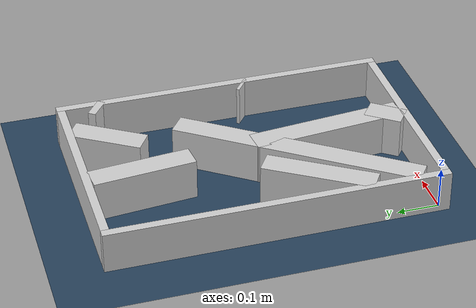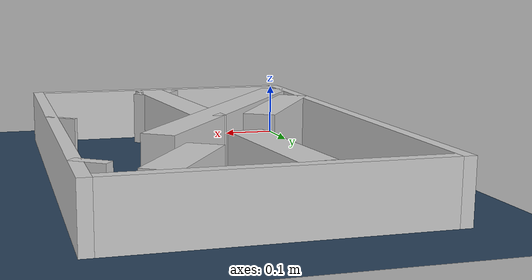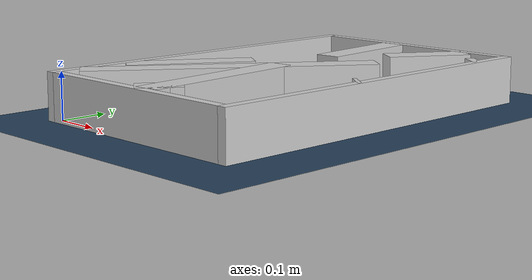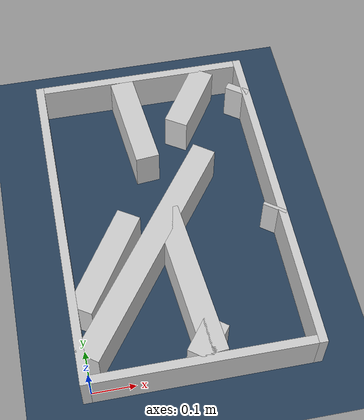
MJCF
<?xml version="1.0" ?>
<mujoco model="generated_real_template">
  <compiler angle="degree"/>
  <option timestep="0.002" integrator="implicitfast" iterations="100" cone="elliptic"/>
  <default>
    <geom density="1"/>
  </default>
  <asset>
    <texture builtin="gradient" height="3072" rgb1="0.3 0.5 0.7" rgb2="0 0 0" type="skybox" width="512"/>
    <texture builtin="checker" height="300" mark="edge" markrgb="0.8 0.8 0.8" name="groundplane" rgb1="0.2 0.3 0.4" rgb2="0.1 0.2 0.3" type="2d" width="300"/>
    <material name="groundplane" reflectance="0.2" texrepeat="5 5" texture="groundplane" texuniform="true"/>
  </asset>
  <worldbody>
    <light dir="0 0 -1" directional="true" pos="0 0 1.5"/>
    <geom name="floor" type="plane" condim="4" friction="0.5 0.005 0.001" material="groundplane" size="0 0 0.05"/>
    <body name="walls">
      <geom name="wall_boundary_left" type="box" condim="4" friction="1.0 0.005 0.0001" rgba="0.8 0.8 0.8 1" pos="-0.010000 0.387500 0.050000" euler="0 0 0.000000" size="0.010000 0.407500 0.050000"/>
      <geom name="wall_boundary_right" type="box" condim="4" friction="1.0 0.005 0.0001" rgba="0.8 0.8 0.8 1" pos="0.500000 0.387500 0.050000" euler="0 0 0.000000" size="0.010000 0.407500 0.050000"/>
      <geom name="wall_boundary_bottom" type="box" condim="4" friction="1.0 0.005 0.0001" rgba="0.8 0.8 0.8 1" pos="0.245000 -0.010000 0.050000" euler="0 0 0.000000" size="0.245000 0.010000 0.050000"/>
      <geom name="wall_boundary_top" type="box" condim="4" friction="1.0 0.005 0.0001" rgba="0.8 0.8 0.8 1" pos="0.245000 0.785000 0.050000" euler="0 0 0.000000" size="0.245000 0.010000 0.050000"/>
      <geom name="wall_inner_1_1" type="box" condim="4" friction="1.0 0.005 0.0001" rgba="0.8 0.8 0.8 1" pos="0.356642 0.698996 0.050000" euler="0 0 -122.880056" size="0.090502 0.028500 0.050000"/>
      <geom name="wall_inner_1_2" type="box" condim="4" friction="1.0 0.005 0.0001" rgba="0.8 0.8 0.8 1" pos="0.076578 0.265752 0.050000" euler="0 0 -122.880056" size="0.133808 0.028500 0.050000"/>
      <geom name="wall_inner_2_1" type="box" condim="4" friction="1.0 0.005 0.0001" rgba="0.8 0.8 0.8 1" pos="0.484838 0.331810 0.050000" euler="0 0 -126.958143" size="0.003971 0.028500 0.050000"/>
      <geom name="wall_inner_2_2" type="box" condim="4" friction="1.0 0.005 0.0001" rgba="0.8 0.8 0.8 1" pos="0.262678 0.036545 0.050000" euler="0 0 -126.958143" size="0.045735 0.028500 0.050000"/>
      <geom name="wall_inner_3_1" type="box" condim="4" friction="1.0 0.005 0.0001" rgba="0.8 0.8 0.8 1" pos="0.253552 0.188268 0.050000" euler="0 0 95.531810" size="0.189148 0.028500 0.050000"/>
      <geom name="wall_inner_3_2" type="box" condim="4" friction="1.0 0.005 0.0001" rgba="0.8 0.8 0.8 1" pos="0.208640 0.652001 0.050000" euler="0 0 95.531810" size="0.123575 0.028500 0.050000"/>
      <geom name="wall_inner_4_1" type="box" condim="4" friction="1.0 0.005 0.0001" rgba="0.8 0.8 0.8 1" pos="0.481264 0.699585 0.050000" euler="0 0 -125.975813" size="0.009654 0.028500 0.050000"/>
      <geom name="wall_inner_4_2" type="box" condim="4" friction="1.0 0.005 0.0001" rgba="0.8 0.8 0.8 1" pos="0.181182 0.286191 0.050000" euler="0 0 -125.975813" size="0.303207 0.028500 0.050000"/>
    </body>
  </worldbody>
</mujoco>
